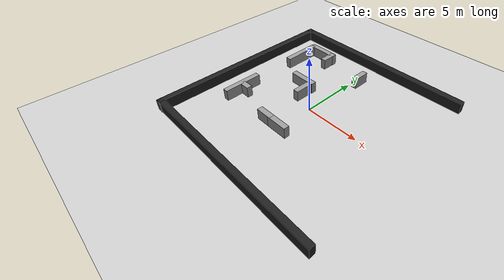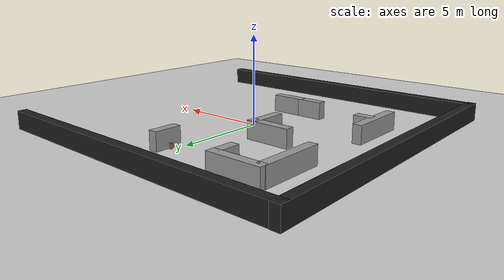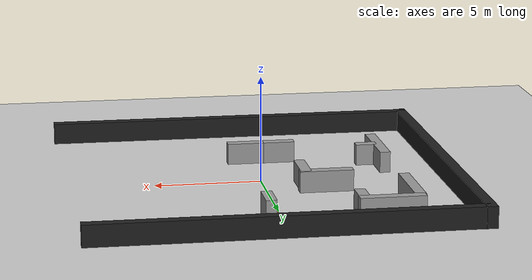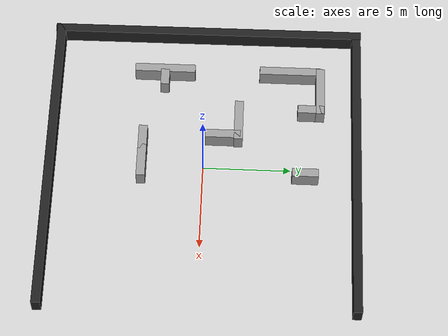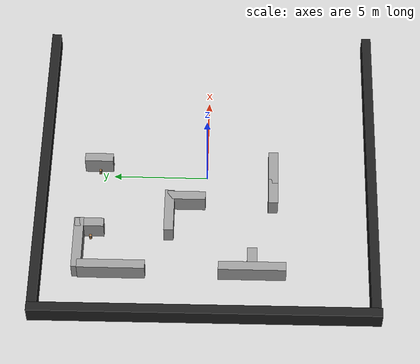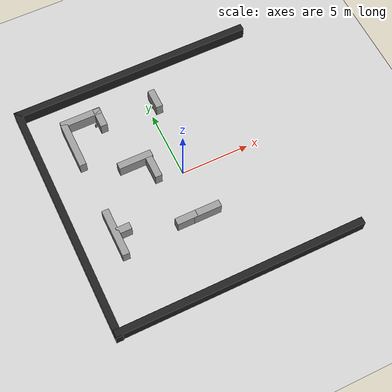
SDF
<sdf version="1.7">
 <world name="default">
  <model name="ground_plane">
   <static>1</static>
   <link name="link">
    <collision name="collision">
     <geometry><plane><normal>0 0 1</normal><size>100 100</size></plane></geometry>
     <surface><friction><ode><mu>100</mu><mu2>50</mu2></ode></friction></surface>
    </collision>
    <visual name="visual">
     <cast_shadows>0</cast_shadows>
     <geometry><plane><normal>0 0 1</normal><size>100 100</size></plane></geometry>
     <material>
      <script><uri>file://media/materials/scripts/gazebo.material</uri><name>Gazebo/Grey</name></script>
     </material>
    </visual>
   </link>
  </model>
  <model name="h6">
   <static>1</static>
   <pose>0.576546 5.8095 0.5 0 -0 0</pose>
   <link name="link">
    <inertial>
     <mass>1</mass>
     <inertia>
      <ixx>0.166667</ixx>
      <ixy>0</ixy>
      <ixz>0</ixz>
      <iyy>0.166667</iyy>
      <iyz>0</iyz>
      <izz>0.166667</izz>
     </inertia>
    </inertial>
    <collision name="collision"><geometry><box><size>0.5 1.5 1</size></box></geometry></collision>
    <visual name="visual">
     <geometry><box><size>0.5 1.5 1</size></box></geometry>
     <material>
      <script><name>Gazebo/Grey</name><uri>file://media/materials/scripts/gazebo.material</uri></script>
     </material>
    </visual>
   </link>
  </model>
  <model name="h7">
   <static>1</static>
   <pose>-3.57564 6.08723 0.5 0 -0 0</pose>
   <link name="link">
    <inertial>
     <mass>1</mass>
     <inertia>
      <ixx>0.166667</ixx>
      <ixy>0</ixy>
      <ixz>0</ixz>
      <iyy>0.166667</iyy>
      <iyz>0</iyz>
      <izz>0.166667</izz>
     </inertia>
    </inertial>
    <collision name="collision"><geometry><box><size>0.5 1.5 1</size></box></geometry></collision>
    <visual name="visual">
     <geometry><box><size>0.5 1.5 1</size></box></geometry>
     <material>
      <script><name>Gazebo/Grey</name><uri>file://media/materials/scripts/gazebo.material</uri></script>
     </material>
    </visual>
   </link>
  </model>
  <model name="h11">
   <static>1</static>
   <pose>-1.77773 1.07116 0.5 0 -0 0</pose>
   <link name="link">
    <inertial>
     <mass>1</mass>
     <inertia>
      <ixx>0.166667</ixx>
      <ixy>0</ixy>
      <ixz>0</ixz>
      <iyy>0.166667</iyy>
      <iyz>0</iyz>
      <izz>0.166667</izz>
     </inertia>
    </inertial>
    <collision name="collision"><geometry><box><size>0.5 2 1</size></box></geometry></collision>
    <visual name="visual">
     <geometry><box><size>0.5 2 1</size></box></geometry>
     <material>
      <script><name>Gazebo/Grey</name><uri>file://media/materials/scripts/gazebo.material</uri></script>
     </material>
    </visual>
   </link>
  </model>
  <model name="v13">
   <static>1</static>
   <pose>-1.40033 -3.49756 0.5 0 -0 0</pose>
   <link name="link">
    <inertial>
     <mass>1</mass>
     <inertia>
      <ixx>0.166667</ixx>
      <ixy>0</ixy>
      <ixz>0</ixz>
      <iyy>0.166667</iyy>
      <iyz>0</iyz>
      <izz>0.166667</izz>
     </inertia>
    </inertial>
    <collision name="collision"><geometry><box><size>1.5 0.5 1</size></box></geometry></collision>
    <visual name="visual">
     <geometry><box><size>1.5 0.5 1</size></box></geometry>
     <material>
      <script><name>Gazebo/Grey</name><uri>file://media/materials/scripts/gazebo.material</uri></script>
     </material>
    </visual>
   </link>
  </model>
  <model name="v15">
   <static>1</static>
   <pose>0.092317 -3.50011 0.5 0 -0 0</pose>
   <link name="link">
    <inertial>
     <mass>1</mass>
     <inertia>
      <ixx>0.166667</ixx>
      <ixy>0</ixy>
      <ixz>0</ixz>
      <iyy>0.166667</iyy>
      <iyz>0</iyz>
      <izz>0.166667</izz>
     </inertia>
    </inertial>
    <collision name="collision"><geometry><box><size>2 0.5 1</size></box></geometry></collision>
    <visual name="visual">
     <geometry><box><size>2 0.5 1</size></box></geometry>
     <material>
      <script><name>Gazebo/Grey</name><uri>file://media/materials/scripts/gazebo.material</uri></script>
     </material>
    </visual>
   </link>
  </model>
  <model name="v18">
   <static>1</static>
   <pose>-2.72066 1.95316 0.5 0 -0 0</pose>
   <link name="link">
    <inertial>
     <mass>1</mass>
     <inertia>
      <ixx>0.166667</ixx>
      <ixy>0</ixy>
      <ixz>0</ixz>
      <iyy>0.166667</iyy>
      <iyz>0</iyz>
      <izz>0.166667</izz>
     </inertia>
    </inertial>
    <collision name="collision"><geometry><box><size>2.5 0.5 1</size></box></geometry></collision>
    <visual name="visual">
     <geometry><box><size>2.5 0.5 1</size></box></geometry>
     <material>
      <script><name>Gazebo/Grey</name><uri>file://media/materials/scripts/gazebo.material</uri></script>
     </material>
    </visual>
   </link>
  </model>
  <model name="v20">
   <static>1</static>
   <pose>-5.48278 -2.41567 0.5 0 -0 0</pose>
   <link name="link">
    <inertial>
     <mass>1</mass>
     <inertia>
      <ixx>0.166667</ixx>
      <ixy>0</ixy>
      <ixz>0</ixz>
      <iyy>0.166667</iyy>
      <iyz>0</iyz>
      <izz>0.166667</izz>
     </inertia>
    </inertial>
    <collision name="collision"><geometry><box><size>1 0.5 1</size></box></geometry></collision>
    <visual name="visual">
     <geometry><box><size>1 0.5 1</size></box></geometry>
     <material>
      <script><name>Gazebo/Grey</name><uri>file://media/materials/scripts/gazebo.material</uri></script>
     </material>
    </visual>
   </link>
  </model>
  <model name="aruco_column_6x6_100mm_42">
   <link name="link">
    <pose>0 0 0.15 0 -0 0</pose>
    <inertial>
     <mass>1</mass>
     <inertia><ixx>1</ixx><ixy>0</ixy><ixz>0</ixz><iyy>1</iyy><iyz>0</iyz><izz>1</izz></inertia>
    </inertial>
    <collision name="collision">
     <geometry><box><size>0.12 0.12 0.3</size></box></geometry>
     <surface>
      <contact>
       <poissons_ratio>0.347</poissons_ratio>
       <elastic_modulus>8.8e+09</elastic_modulus>
       <ode><kp>100000</kp><kd>1</kd><max_vel>1</max_vel><min_depth>0.001</min_depth></ode>
      </contact>
      <friction>
       <torsional>
        <coefficient>1</coefficient>
        <use_patch_radius>0</use_patch_radius>
        <surface_radius>0.05</surface_radius>
       </torsional>
      </friction>
     </surface>
    </collision>
    <visual name="visual">
     <geometry><box><size>0.12 0.12 0.3</size></box></geometry>
     <material>
      <script><uri>file://media/materials/scripts/gazebo.material</uri><name>Gazebo/Wood</name></script>
     </material>
    </visual>
   </link>
   <link name="aruco_6x6_100mm_42::main">
    <pose relative_to="aruco_6x6_100mm_42::__model__">0 0 0 0 -0 0</pose>
    <visual name="main_Visual">
     <geometry><box><size>0.1 0.1 0.001</size></box></geometry>
     <material>
      <script>
       <uri>file://media/materials/scripts</uri>
       <uri>file://media/materials/textures</uri>
       <name>aruco_6x6_100mm_42</name>
      </script>
     </material>
    </visual>
    <inertial>
     <inertia><ixx>1</ixx><ixy>0</ixy><ixz>0</ixz><iyy>1</iyy><iyz>0</iyz><izz>1</izz></inertia>
     <mass>1</mass>
    </inertial>
   </link>
   <frame name="aruco_6x6_100mm_42::__model__" attached_to="aruco_6x6_100mm_42::main">
    <pose relative_to="__model__">-0.06 0 0.24 3.14159 1.57079 3.14159</pose>
   </frame>
   <joint name="aruco_6x6_100mm_42_joint" type="fixed">
    <child>aruco_6x6_100mm_42::main</child>
    <parent>link</parent>
   </joint>
   <pose>-3.95817 6.03807 -0.001049 0 -0.000405 0</pose>
  </model>
  <model name="aruco_column_6x6_100mm_0">
   <link name="link">
    <pose>0 0 0.15 0 -0 0</pose>
    <inertial>
     <mass>1</mass>
     <inertia><ixx>1</ixx><ixy>0</ixy><ixz>0</ixz><iyy>1</iyy><iyz>0</iyz><izz>1</izz></inertia>
    </inertial>
    <collision name="collision">
     <geometry><box><size>0.12 0.12 0.3</size></box></geometry>
     <surface>
      <contact>
       <poissons_ratio>0.347</poissons_ratio>
       <elastic_modulus>8.8e+09</elastic_modulus>
       <ode><kp>100000</kp><kd>1</kd><max_vel>1</max_vel><min_depth>0.001</min_depth></ode>
      </contact>
      <friction>
       <torsional>
        <coefficient>1</coefficient>
        <use_patch_radius>0</use_patch_radius>
        <surface_radius>0.05</surface_radius>
       </torsional>
      </friction>
     </surface>
    </collision>
    <visual name="visual">
     <geometry><box><size>0.12 0.12 0.3</size></box></geometry>
     <material>
      <script><uri>file://media/materials/scripts/gazebo.material</uri><name>Gazebo/Wood</name></script>
     </material>
    </visual>
   </link>
   <link name="aruco_6x6_100mm_0::main">
    <pose relative_to="aruco_6x6_100mm_0::__model__">0 0 0 0 -0 0</pose>
    <visual name="main_Visual">
     <geometry><box><size>0.1 0.1 0.001</size></box></geometry>
     <material>
      <script>
       <uri>file://media/materials/scripts</uri>
       <uri>file://media/materials/textures</uri>
       <name>aruco_6x6_100mm_0</name>
      </script>
     </material>
    </visual>
    <inertial>
     <inertia><ixx>1</ixx><ixy>0</ixy><ixz>0</ixz><iyy>1</iyy><iyz>0</iyz><izz>1</izz></inertia>
     <mass>1</mass>
    </inertial>
   </link>
   <frame name="aruco_6x6_100mm_0::__model__" attached_to="aruco_6x6_100mm_0::main">
    <pose relative_to="__model__">-0.06 0 0.19 3.14159 1.57079 3.14159</pose>
   </frame>
   <joint name="aruco_6x6_100mm_0_joint" type="fixed">
    <child>aruco_6x6_100mm_0::main</child>
    <parent>link</parent>
   </joint>
   <pose>0.213147 5.75606 -0.001049 0 -0.000405 0</pose>
  </model>
  <model name="h10_clone">
   <static>1</static>
   <pose>-6.10193 4.84313 0.5 0 -0 0</pose>
   <link name="link">
    <inertial>
     <mass>1</mass>
     <inertia>
      <ixx>0.166667</ixx>
      <ixy>0</ixy>
      <ixz>0</ixz>
      <iyy>0.166667</iyy>
      <iyz>0</iyz>
      <izz>0.166667</izz>
     </inertia>
    </inertial>
    <collision name="collision"><geometry><box><size>0.5 3.5 1</size></box></geometry></collision>
    <visual name="visual">
     <geometry><box><size>0.5 3.5 1</size></box></geometry>
     <material>
      <script><name>Gazebo/Grey</name><uri>file://media/materials/scripts/gazebo.material</uri></script>
     </material>
    </visual>
   </link>
  </model>
  <model name="h10_clone_0">
   <static>1</static>
   <pose>-6.07685 -2.4237 0.5 0 -0 0</pose>
   <link name="link">
    <inertial>
     <mass>1</mass>
     <inertia>
      <ixx>0.166667</ixx>
      <ixy>0</ixy>
      <ixz>0</ixz>
      <iyy>0.166667</iyy>
      <iyz>0</iyz>
      <izz>0.166667</izz>
     </inertia>
    </inertial>
    <collision name="collision"><geometry><box><size>0.5 3.5 1</size></box></geometry></collision>
    <visual name="visual">
     <geometry><box><size>0.5 3.5 1</size></box></geometry>
     <material>
      <script><name>Gazebo/Grey</name><uri>file://media/materials/scripts/gazebo.material</uri></script>
     </material>
    </visual>
   </link>
  </model>
  <model name="v16_clone_0_clone">
   <static>1</static>
   <pose>-4.81128 6.62469 0.5 0 -0 0</pose>
   <link name="link">
    <inertial>
     <mass>1</mass>
     <inertia>
      <ixx>0.166667</ixx>
      <ixy>0</ixy>
      <ixz>0</ixz>
      <iyy>0.166667</iyy>
      <iyz>0</iyz>
      <izz>0.166667</izz>
     </inertia>
    </inertial>
    <collision name="collision"><geometry><box><size>3 0.5 1</size></box></geometry></collision>
    <visual name="visual">
     <geometry><box><size>3 0.5 1</size></box></geometry>
     <material>
      <script><name>Gazebo/Grey</name><uri>file://media/materials/scripts/gazebo.material</uri></script>
     </material>
    </visual>
   </link>
  </model>
  <model name="long_wall">
   <link name="link">
    <inertial>
     <mass>1</mass>
     <inertia>
      <ixx>0.166667</ixx>
      <ixy>0</ixy>
      <ixz>0</ixz>
      <iyy>0.166667</iyy>
      <iyz>0</iyz>
      <izz>0.166667</izz>
     </inertia>
    </inertial>
    <visual name="visual">
     <geometry><box><size>18 0.5 1</size></box></geometry>
     <material>
      <script><name>Gazebo/Black</name><uri>file://media/materials/scripts/gazebo.material</uri></script>
      <shader type="pixel"><normal_map>__default__</normal_map></shader>
      <ambient>0 0 0 1</ambient>
      <diffuse>0 0 0 1</diffuse>
      <specular>0.1 0.1 0.1 1</specular>
      <emissive>0 0 0 1</emissive>
     </material>
    </visual>
    <collision name="collision">
     <geometry><box><size>18 0.5 1</size></box></geometry>
     <surface>
      <friction>
       <ode><mu>1</mu><mu2>1</mu2><fdir1>0 0 0</fdir1><slip1>0</slip1><slip2>0</slip2></ode>
       <torsional>
        <coefficient>1</coefficient>
        <patch_radius>0</patch_radius>
        <surface_radius>0</surface_radius>
        <use_patch_radius>1</use_patch_radius>
        <ode><slip>0</slip></ode>
       </torsional>
      </friction>
      <bounce><restitution_coefficient>0</restitution_coefficient><threshold>1e+06</threshold></bounce>
      <contact>
       <collide_without_contact>0</collide_without_contact>
       <collide_without_contact_bitmask>1</collide_without_contact_bitmask>
       <collide_bitmask>1</collide_bitmask>
       <ode>
        <soft_cfm>0</soft_cfm>
        <soft_erp>0.2</soft_erp>
        <kp>1e+13</kp>
        <kd>1</kd>
        <max_vel>0.01</max_vel>
        <min_depth>0</min_depth>
       </ode>
       <bullet>
        <split_impulse>1</split_impulse>
        <split_impulse_penetration_threshold>-0.01</split_impulse_penetration_threshold>
        <soft_cfm>0</soft_cfm>
        <soft_erp>0.2</soft_erp>
        <kp>1e+13</kp>
        <kd>1</kd>
       </bullet>
      </contact>
     </surface>
    </collision>
   </link>
   <static>1</static>
   <pose>0.041978 8.71884 0.5 0 -0 0</pose>
  </model>
  <model name="long_wall_clone">
   <link name="link">
    <inertial>
     <mass>1</mass>
     <inertia>
      <ixx>0.166667</ixx>
      <ixy>0</ixy>
      <ixz>0</ixz>
      <iyy>0.166667</iyy>
      <iyz>0</iyz>
      <izz>0.166667</izz>
     </inertia>
    </inertial>
    <visual name="visual">
     <geometry><box><size>18 0.5 1</size></box></geometry>
     <material>
      <script><name>Gazebo/Black</name><uri>file://media/materials/scripts/gazebo.material</uri></script>
      <shader type="pixel"><normal_map>__default__</normal_map></shader>
      <ambient>0 0 0 1</ambient>
      <diffuse>0 0 0 1</diffuse>
      <specular>0.1 0.1 0.1 1</specular>
      <emissive>0 0 0 1</emissive>
     </material>
    </visual>
    <collision name="collision">
     <geometry><box><size>18 0.5 1</size></box></geometry>
     <surface>
      <friction>
       <ode><mu>1</mu><mu2>1</mu2><fdir1>0 0 0</fdir1><slip1>0</slip1><slip2>0</slip2></ode>
       <torsional>
        <coefficient>1</coefficient>
        <patch_radius>0</patch_radius>
        <surface_radius>0</surface_radius>
        <use_patch_radius>1</use_patch_radius>
        <ode><slip>0</slip></ode>
       </torsional>
      </friction>
      <bounce><restitution_coefficient>0</restitution_coefficient><threshold>1e+06</threshold></bounce>
      <contact>
       <collide_without_contact>0</collide_without_contact>
       <collide_without_contact_bitmask>1</collide_without_contact_bitmask>
       <collide_bitmask>1</collide_bitmask>
       <ode>
        <soft_cfm>0</soft_cfm>
        <soft_erp>0.2</soft_erp>
        <kp>1e+13</kp>
        <kd>1</kd>
        <max_vel>0.01</max_vel>
        <min_depth>0</min_depth>
       </ode>
       <bullet>
        <split_impulse>1</split_impulse>
        <split_impulse_penetration_threshold>-0.01</split_impulse_penetration_threshold>
        <soft_cfm>0</soft_cfm>
        <soft_erp>0.2</soft_erp>
        <kp>1e+13</kp>
        <kd>1</kd>
       </bullet>
      </contact>
     </surface>
    </collision>
   </link>
   <static>1</static>
   <pose>0.120203 -8.71207 0.5 0 -0 0</pose>
  </model>
  <model name="long_wall_horizontal_clone">
   <link name="link">
    <inertial>
     <mass>1</mass>
     <inertia>
      <ixx>0.166667</ixx>
      <ixy>0</ixy>
      <ixz>0</ixz>
      <iyy>0.166667</iyy>
      <iyz>0</iyz>
      <izz>0.166667</izz>
     </inertia>
    </inertial>
    <visual name="visual">
     <geometry><box><size>18 0.5 1</size></box></geometry>
     <material>
      <script><name>Gazebo/Black</name><uri>file://media/materials/scripts/gazebo.material</uri></script>
      <shader type="pixel"><normal_map>__default__</normal_map></shader>
      <ambient>0 0 0 1</ambient>
      <diffuse>0 0 0 1</diffuse>
      <specular>0.1 0.1 0.1 1</specular>
      <emissive>0 0 0 1</emissive>
     </material>
    </visual>
    <collision name="collision">
     <geometry><box><size>18 0.5 1</size></box></geometry>
     <surface>
      <friction>
       <ode><mu>1</mu><mu2>1</mu2><fdir1>0 0 0</fdir1><slip1>0</slip1><slip2>0</slip2></ode>
       <torsional>
        <coefficient>1</coefficient>
        <patch_radius>0</patch_radius>
        <surface_radius>0</surface_radius>
        <use_patch_radius>1</use_patch_radius>
        <ode><slip>0</slip></ode>
       </torsional>
      </friction>
      <bounce><restitution_coefficient>0</restitution_coefficient><threshold>1e+06</threshold></bounce>
      <contact>
       <collide_without_contact>0</collide_without_contact>
       <collide_without_contact_bitmask>1</collide_without_contact_bitmask>
       <collide_bitmask>1</collide_bitmask>
       <ode>
        <soft_cfm>0</soft_cfm>
        <soft_erp>0.2</soft_erp>
        <kp>1e+13</kp>
        <kd>1</kd>
        <max_vel>0.01</max_vel>
        <min_depth>0</min_depth>
       </ode>
       <bullet>
        <split_impulse>1</split_impulse>
        <split_impulse_penetration_threshold>-0.01</split_impulse_penetration_threshold>
        <soft_cfm>0</soft_cfm>
        <soft_erp>0.2</soft_erp>
        <kp>1e+13</kp>
        <kd>1</kd>
       </bullet>
      </contact>
     </surface>
    </collision>
   </link>
   <static>1</static>
   <pose>-8.69117 -0.02091 0.5 0 0 -1.56864</pose>
  </model>
 </world>
</sdf>
